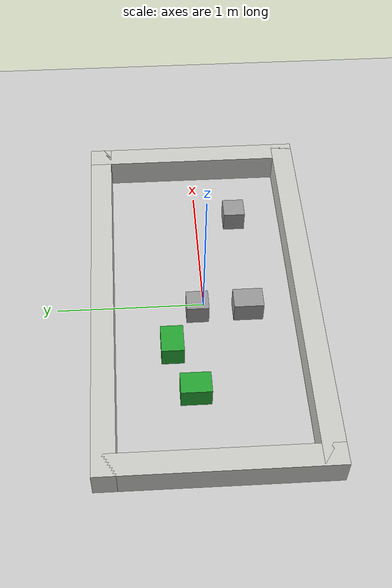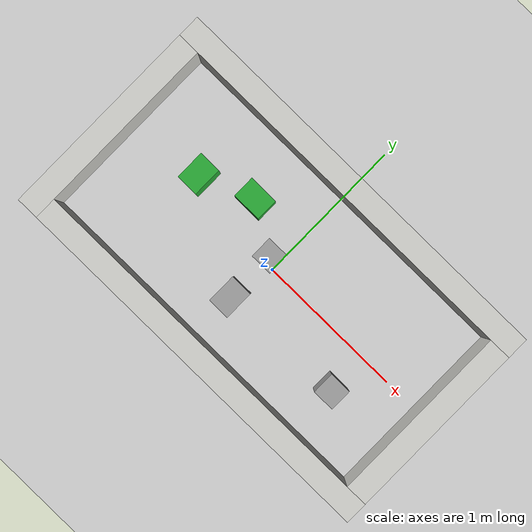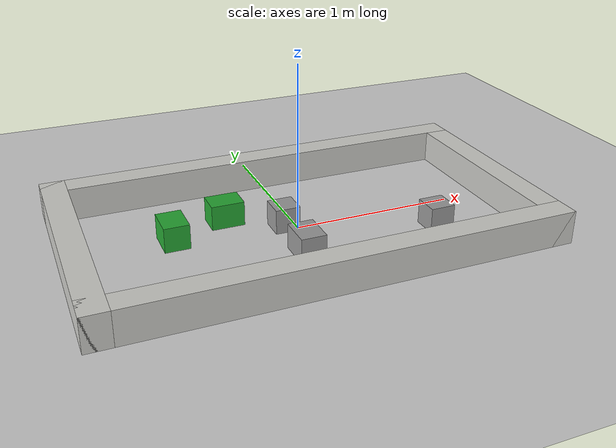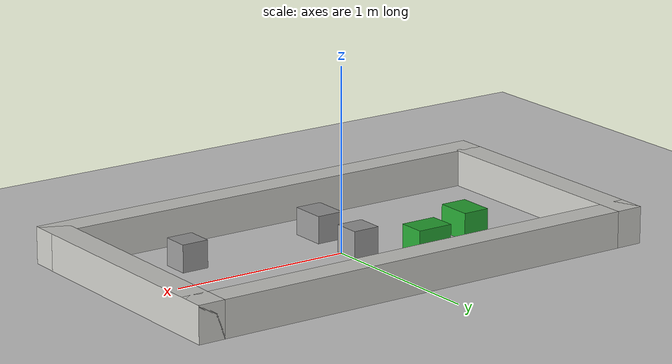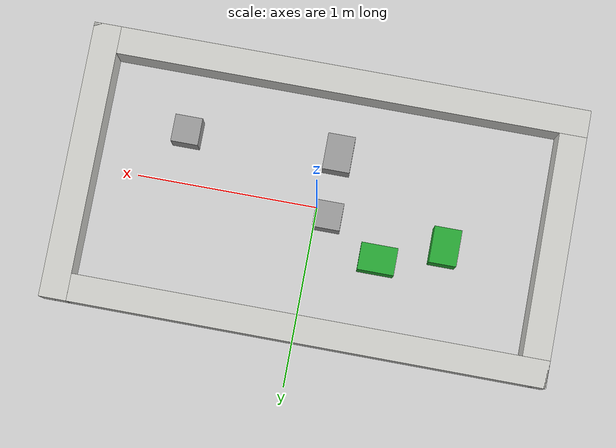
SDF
<sdf version="1.7">
 <world name="default">
  <light name="sun" type="directional">
   <pose>0 0 10 0 -0 0</pose>
   <diffuse>0.8 0.8 0.8 1</diffuse>
   <specular>0.2 0.2 0.2 1</specular>
   <attenuation>
    <range>1000</range>
    <constant>0.9</constant>
    <linear>0.01</linear>
    <quadratic>0.001</quadratic>
   </attenuation>
   <direction>-0.5 0.1 -0.9</direction>
   <spot><inner_angle>0</inner_angle><outer_angle>0</outer_angle><falloff>0</falloff></spot>
  </light>
  <model name="ground_plane">
   <static>1</static>
   <link name="link">
    <collision name="collision">
     <geometry><plane><normal>0 0 1</normal><size>100 100</size></plane></geometry>
     <surface><friction><ode><mu>100</mu><mu2>50</mu2></ode></friction></surface>
    </collision>
    <visual name="visual">
     <cast_shadows>0</cast_shadows>
     <geometry><plane><normal>0 0 1</normal><size>100 100</size></plane></geometry>
     <material>
      <script><uri>file://media/materials/scripts/gazebo.material</uri><name>Gazebo/Grey</name></script>
     </material>
    </visual>
   </link>
  </model>
  <gravity>0 0 -9.8</gravity>
  <magnetic_field>6e-06 2.3e-05 -4.2e-05</magnetic_field>
  <atmosphere type="adiabatic"/>
  <physics type="ode">
   <max_step_size>0.001</max_step_size>
   <real_time_factor>1</real_time_factor>
   <real_time_update_rate>1000</real_time_update_rate>
  </physics>
  <scene><ambient>0.4 0.4 0.4 1</ambient><background>0.7 0.7 0.7 1</background><shadows>1</shadows></scene>
  <audio><device>default</device></audio>
  <spherical_coordinates>
   <surface_model>EARTH_WGS84</surface_model>
   <latitude_deg>0</latitude_deg>
   <longitude_deg>0</longitude_deg>
   <elevation>0</elevation>
   <heading_deg>0</heading_deg>
  </spherical_coordinates>
  <model name="area_basic">
   <link name="Wall_20">
    <collision name="Wall_20_Collision">
     <geometry><box><size>2.74 0.15 0.2</size></box></geometry>
     <pose>0 0 0.1 0 -0 0</pose>
    </collision>
    <visual name="Wall_20_Visual">
     <pose>0 0 0.1 0 -0 0</pose>
     <geometry><box><size>2.74 0.15 0.2</size></box></geometry>
     <material>
      <script><uri>file://media/materials/scripts/gazebo.material</uri><name>Gazebo/CeilingTiled</name></script>
      <ambient>1 1 1 1</ambient>
     </material>
     <meta><layer>0</layer></meta>
    </visual>
    <pose>0 0.685 0 0 -0 0</pose>
   </link>
   <link name="Wall_22">
    <collision name="Wall_22_Collision">
     <geometry><box><size>1.52 0.15 0.2</size></box></geometry>
     <pose>0 0 0.1 0 -0 0</pose>
    </collision>
    <visual name="Wall_22_Visual">
     <pose>0 0 0.1 0 -0 0</pose>
     <geometry><box><size>1.52 0.15 0.2</size></box></geometry>
     <material>
      <script><uri>file://media/materials/scripts/gazebo.material</uri><name>Gazebo/CeilingTiled</name></script>
      <ambient>1 1 1 1</ambient>
     </material>
     <meta><layer>0</layer></meta>
    </visual>
    <pose>-1.295 0 0 0 -0 -1.5708</pose>
   </link>
   <link name="Wall_25">
    <collision name="Wall_25_Collision">
     <geometry><box><size>2.74 0.15 0.2</size></box></geometry>
     <pose>0 0 0.1 0 -0 0</pose>
    </collision>
    <visual name="Wall_25_Visual">
     <pose>0 0 0.1 0 -0 0</pose>
     <geometry><box><size>2.74 0.15 0.2</size></box></geometry>
     <material>
      <script><uri>file://media/materials/scripts/gazebo.material</uri><name>Gazebo/CeilingTiled</name></script>
      <ambient>1 1 1 1</ambient>
     </material>
     <meta><layer>0</layer></meta>
    </visual>
    <pose>0 -0.685 0 0 -0 0</pose>
   </link>
   <link name="Wall_27">
    <collision name="Wall_27_Collision">
     <geometry><box><size>1.52 0.15 0.2</size></box></geometry>
     <pose>0 0 0.1 0 -0 0</pose>
    </collision>
    <visual name="Wall_27_Visual">
     <pose>0 0 0.1 0 -0 0</pose>
     <geometry><box><size>1.52 0.15 0.2</size></box></geometry>
     <material>
      <script><uri>file://media/materials/scripts/gazebo.material</uri><name>Gazebo/CeilingTiled</name></script>
      <ambient>1 1 1 1</ambient>
     </material>
     <meta><layer>0</layer></meta>
    </visual>
    <pose>1.295 0 0 0 -0 -1.5708</pose>
   </link>
   <static>1</static>
  </model>
  <model name="Cubo_15_15">
   <link name="link">
    <inertial>
     <mass>1</mass>
     <inertia>
      <ixx>0.166667</ixx>
      <ixy>0</ixy>
      <ixz>0</ixz>
      <iyy>0.166667</iyy>
      <iyz>0</iyz>
      <izz>0.166667</izz>
     </inertia>
    </inertial>
    <visual name="visual">
     <geometry><box><size>0.15 0.15 0.15</size></box></geometry>
     <material>
      <script><name>Gazebo/Grey</name><uri>file://media/materials/scripts/gazebo.material</uri></script>
      <shader type="pixel"><normal_map>__default__</normal_map></shader>
      <ambient>0.3 0.3 0.3 1</ambient>
      <diffuse>0.7 0.7 0.7 1</diffuse>
      <specular>0.01 0.01 0.01 1</specular>
      <emissive>0 0 0 1</emissive>
     </material>
    </visual>
    <collision name="collision">
     <geometry><box><size>0.15 0.15 0.15</size></box></geometry>
     <surface>
      <friction>
       <ode><mu>1</mu><mu2>1</mu2><fdir1>0 0 0</fdir1><slip1>0</slip1><slip2>0</slip2></ode>
       <torsional>
        <coefficient>1</coefficient>
        <patch_radius>0</patch_radius>
        <surface_radius>0</surface_radius>
        <use_patch_radius>1</use_patch_radius>
        <ode><slip>0</slip></ode>
       </torsional>
      </friction>
      <bounce><restitution_coefficient>0</restitution_coefficient><threshold>1e+06</threshold></bounce>
      <contact>
       <collide_without_contact>0</collide_without_contact>
       <collide_without_contact_bitmask>1</collide_without_contact_bitmask>
       <collide_bitmask>1</collide_bitmask>
       <ode>
        <soft_cfm>0</soft_cfm>
        <soft_erp>0.2</soft_erp>
        <kp>1e+13</kp>
        <kd>1</kd>
        <max_vel>0.01</max_vel>
        <min_depth>0</min_depth>
       </ode>
       <bullet>
        <split_impulse>1</split_impulse>
        <split_impulse_penetration_threshold>-0.01</split_impulse_penetration_threshold>
        <soft_cfm>0</soft_cfm>
        <soft_erp>0.2</soft_erp>
        <kp>1e+13</kp>
        <kd>1</kd>
       </bullet>
      </contact>
     </surface>
    </collision>
   </link>
   <static>0</static>
   <pose>-0.070518 0.048079 0.075 3e-06 2e-06 -7e-06</pose>
  </model>
  <model name="Cubo_15_15_0">
   <link name="link">
    <inertial>
     <mass>1</mass>
     <inertia>
      <ixx>0.166667</ixx>
      <ixy>0</ixy>
      <ixz>0</ixz>
      <iyy>0.166667</iyy>
      <iyz>0</iyz>
      <izz>0.166667</izz>
     </inertia>
    </inertial>
    <visual name="visual">
     <geometry><box><size>0.15 0.15 0.15</size></box></geometry>
     <material>
      <script><name>Gazebo/Grey</name><uri>file://media/materials/scripts/gazebo.material</uri></script>
      <shader type="pixel"><normal_map>__default__</normal_map></shader>
      <ambient>0.3 0.3 0.3 1</ambient>
      <diffuse>0.7 0.7 0.7 1</diffuse>
      <specular>0.01 0.01 0.01 1</specular>
      <emissive>0 0 0 1</emissive>
     </material>
    </visual>
    <collision name="collision">
     <geometry><box><size>0.15 0.15 0.15</size></box></geometry>
     <surface>
      <friction>
       <ode><mu>1</mu><mu2>1</mu2><fdir1>0 0 0</fdir1><slip1>0</slip1><slip2>0</slip2></ode>
       <torsional>
        <coefficient>1</coefficient>
        <patch_radius>0</patch_radius>
        <surface_radius>0</surface_radius>
        <use_patch_radius>1</use_patch_radius>
        <ode><slip>0</slip></ode>
       </torsional>
      </friction>
      <bounce><restitution_coefficient>0</restitution_coefficient><threshold>1e+06</threshold></bounce>
      <contact>
       <collide_without_contact>0</collide_without_contact>
       <collide_without_contact_bitmask>1</collide_without_contact_bitmask>
       <collide_bitmask>1</collide_bitmask>
       <ode>
        <soft_cfm>0</soft_cfm>
        <soft_erp>0.2</soft_erp>
        <kp>1e+13</kp>
        <kd>1</kd>
        <max_vel>0.01</max_vel>
        <min_depth>0</min_depth>
       </ode>
       <bullet>
        <split_impulse>1</split_impulse>
        <split_impulse_penetration_threshold>-0.01</split_impulse_penetration_threshold>
        <soft_cfm>0</soft_cfm>
        <soft_erp>0.2</soft_erp>
        <kp>1e+13</kp>
        <kd>1</kd>
       </bullet>
      </contact>
     </surface>
    </collision>
   </link>
   <static>0</static>
   <pose>0.769321 -0.273583 0.075 -1e-06 4e-06 -8e-06</pose>
  </model>
  <model name="Prima_15_15_20_0">
   <link name="link">
    <inertial>
     <mass>1</mass>
     <inertia>
      <ixx>0.166667</ixx>
      <ixy>0</ixy>
      <ixz>0</ixz>
      <iyy>0.166667</iyy>
      <iyz>0</iyz>
      <izz>0.166667</izz>
     </inertia>
    </inertial>
    <visual name="visual">
     <geometry><box><size>0.15 0.2 0.15</size></box></geometry>
     <material>
      <script><name>Gazebo/Grey</name><uri>file://media/materials/scripts/gazebo.material</uri></script>
      <shader type="pixel"><normal_map>__default__</normal_map></shader>
      <ambient>0.3 0.3 0.3 1</ambient>
      <diffuse>0.7 0.7 0.7 1</diffuse>
      <specular>0.01 0.01 0.01 1</specular>
      <emissive>0 0 0 1</emissive>
     </material>
    </visual>
    <collision name="collision">
     <geometry><box><size>0.15 0.2 0.15</size></box></geometry>
     <surface>
      <friction>
       <ode><mu>1</mu><mu2>1</mu2><fdir1>0 0 0</fdir1><slip1>0</slip1><slip2>0</slip2></ode>
       <torsional>
        <coefficient>1</coefficient>
        <patch_radius>0</patch_radius>
        <surface_radius>0</surface_radius>
        <use_patch_radius>1</use_patch_radius>
        <ode><slip>0</slip></ode>
       </torsional>
      </friction>
      <bounce><restitution_coefficient>0</restitution_coefficient><threshold>1e+06</threshold></bounce>
      <contact>
       <collide_without_contact>0</collide_without_contact>
       <collide_without_contact_bitmask>1</collide_without_contact_bitmask>
       <collide_bitmask>1</collide_bitmask>
       <ode>
        <soft_cfm>0</soft_cfm>
        <soft_erp>0.2</soft_erp>
        <kp>1e+13</kp>
        <kd>1</kd>
        <max_vel>0.01</max_vel>
        <min_depth>0</min_depth>
       </ode>
       <bullet>
        <split_impulse>1</split_impulse>
        <split_impulse_penetration_threshold>-0.01</split_impulse_penetration_threshold>
        <soft_cfm>0</soft_cfm>
        <soft_erp>0.2</soft_erp>
        <kp>1e+13</kp>
        <kd>1</kd>
       </bullet>
      </contact>
     </surface>
    </collision>
   </link>
   <static>0</static>
   <pose>-0.067129 -0.296462 0.075 -2e-06 -2e-06 -7e-06</pose>
  </model>
  <model name="Prima_15_15_20_Green">
   <link name="link">
    <inertial>
     <mass>1</mass>
     <inertia>
      <ixx>0.166667</ixx>
      <ixy>0</ixy>
      <ixz>0</ixz>
      <iyy>0.166667</iyy>
      <iyz>0</iyz>
      <izz>0.166667</izz>
     </inertia>
    </inertial>
    <visual name="visual">
     <geometry><box><size>0.15 0.2 0.15</size></box></geometry>
     <material>
      <script><name>Gazebo/Green</name><uri>file://media/materials/scripts/gazebo.material</uri></script>
      <shader type="pixel"><normal_map>__default__</normal_map></shader>
      <ambient>0.3 0.3 0.3 1</ambient>
      <diffuse>0.7 0.7 0.7 1</diffuse>
      <specular>0.01 0.01 0.01 1</specular>
      <emissive>0 0 0 1</emissive>
     </material>
    </visual>
    <collision name="collision">
     <geometry><box><size>0.15 0.2 0.15</size></box></geometry>
     <surface>
      <friction>
       <ode><mu>1</mu><mu2>1</mu2><fdir1>0 0 0</fdir1><slip1>0</slip1><slip2>0</slip2></ode>
       <torsional>
        <coefficient>1</coefficient>
        <patch_radius>0</patch_radius>
        <surface_radius>0</surface_radius>
        <use_patch_radius>1</use_patch_radius>
        <ode><slip>0</slip></ode>
       </torsional>
      </friction>
      <bounce><restitution_coefficient>0</restitution_coefficient><threshold>1e+06</threshold></bounce>
      <contact>
       <collide_without_contact>0</collide_without_contact>
       <collide_without_contact_bitmask>1</collide_without_contact_bitmask>
       <collide_bitmask>1</collide_bitmask>
       <ode>
        <soft_cfm>0</soft_cfm>
        <soft_erp>0.2</soft_erp>
        <kp>1e+13</kp>
        <kd>1</kd>
        <max_vel>0.01</max_vel>
        <min_depth>0</min_depth>
       </ode>
       <bullet>
        <split_impulse>1</split_impulse>
        <split_impulse_penetration_threshold>-0.01</split_impulse_penetration_threshold>
        <soft_cfm>0</soft_cfm>
        <soft_erp>0.2</soft_erp>
        <kp>1e+13</kp>
        <kd>1</kd>
       </bullet>
      </contact>
     </surface>
    </collision>
   </link>
   <static>0</static>
   <pose>-0.722579 0.101215 0.075 -2e-06 4e-06 0</pose>
  </model>
  <model name="Prima_15_15_20_Green_0">
   <link name="link">
    <inertial>
     <mass>1</mass>
     <inertia>
      <ixx>0.166667</ixx>
      <ixy>0</ixy>
      <ixz>0</ixz>
      <iyy>0.166667</iyy>
      <iyz>0</iyz>
      <izz>0.166667</izz>
     </inertia>
    </inertial>
    <visual name="visual">
     <geometry><box><size>0.15 0.2 0.15</size></box></geometry>
     <material>
      <script><name>Gazebo/Green</name><uri>file://media/materials/scripts/gazebo.material</uri></script>
      <shader type="pixel"><normal_map>__default__</normal_map></shader>
      <ambient>0.3 0.3 0.3 1</ambient>
      <diffuse>0.7 0.7 0.7 1</diffuse>
      <specular>0.01 0.01 0.01 1</specular>
      <emissive>0 0 0 1</emissive>
     </material>
    </visual>
    <collision name="collision">
     <geometry><box><size>0.15 0.2 0.15</size></box></geometry>
     <surface>
      <friction>
       <ode><mu>1</mu><mu2>1</mu2><fdir1>0 0 0</fdir1><slip1>0</slip1><slip2>0</slip2></ode>
       <torsional>
        <coefficient>1</coefficient>
        <patch_radius>0</patch_radius>
        <surface_radius>0</surface_radius>
        <use_patch_radius>1</use_patch_radius>
        <ode><slip>0</slip></ode>
       </torsional>
      </friction>
      <bounce><restitution_coefficient>0</restitution_coefficient><threshold>1e+06</threshold></bounce>
      <contact>
       <collide_without_contact>0</collide_without_contact>
       <collide_without_contact_bitmask>1</collide_without_contact_bitmask>
       <collide_bitmask>1</collide_bitmask>
       <ode>
        <soft_cfm>0</soft_cfm>
        <soft_erp>0.2</soft_erp>
        <kp>1e+13</kp>
        <kd>1</kd>
        <max_vel>0.01</max_vel>
        <min_depth>0</min_depth>
       </ode>
       <bullet>
        <split_impulse>1</split_impulse>
        <split_impulse_penetration_threshold>-0.01</split_impulse_penetration_threshold>
        <soft_cfm>0</soft_cfm>
        <soft_erp>0.2</soft_erp>
        <kp>1e+13</kp>
        <kd>1</kd>
       </bullet>
      </contact>
     </surface>
    </collision>
   </link>
   <static>0</static>
   <pose>-0.375007 0.233345 0.075 0 -0 1.57</pose>
  </model>
 </world>
</sdf>
